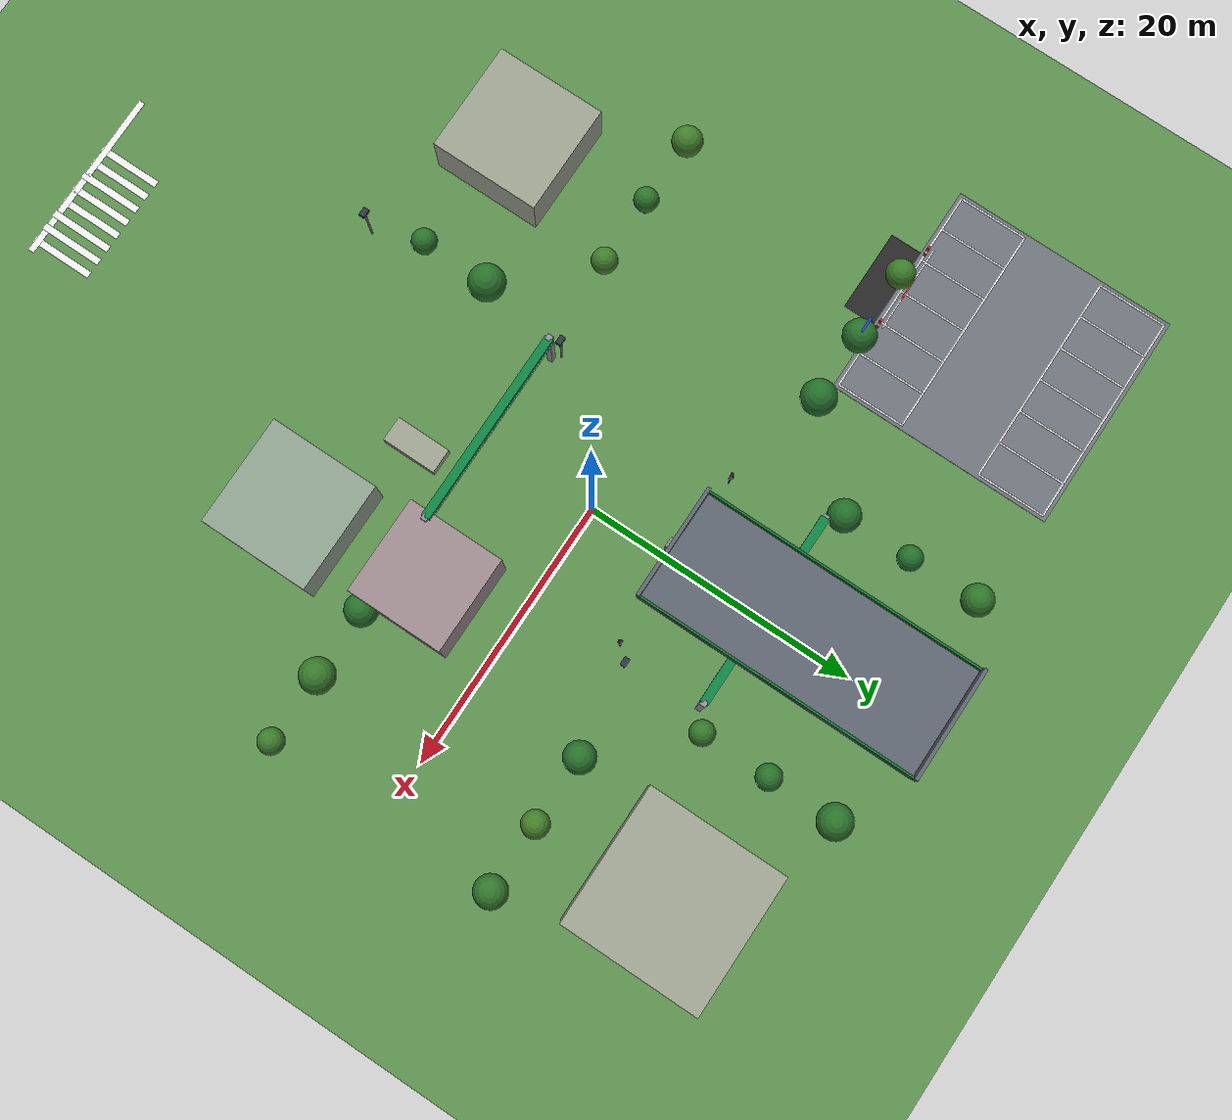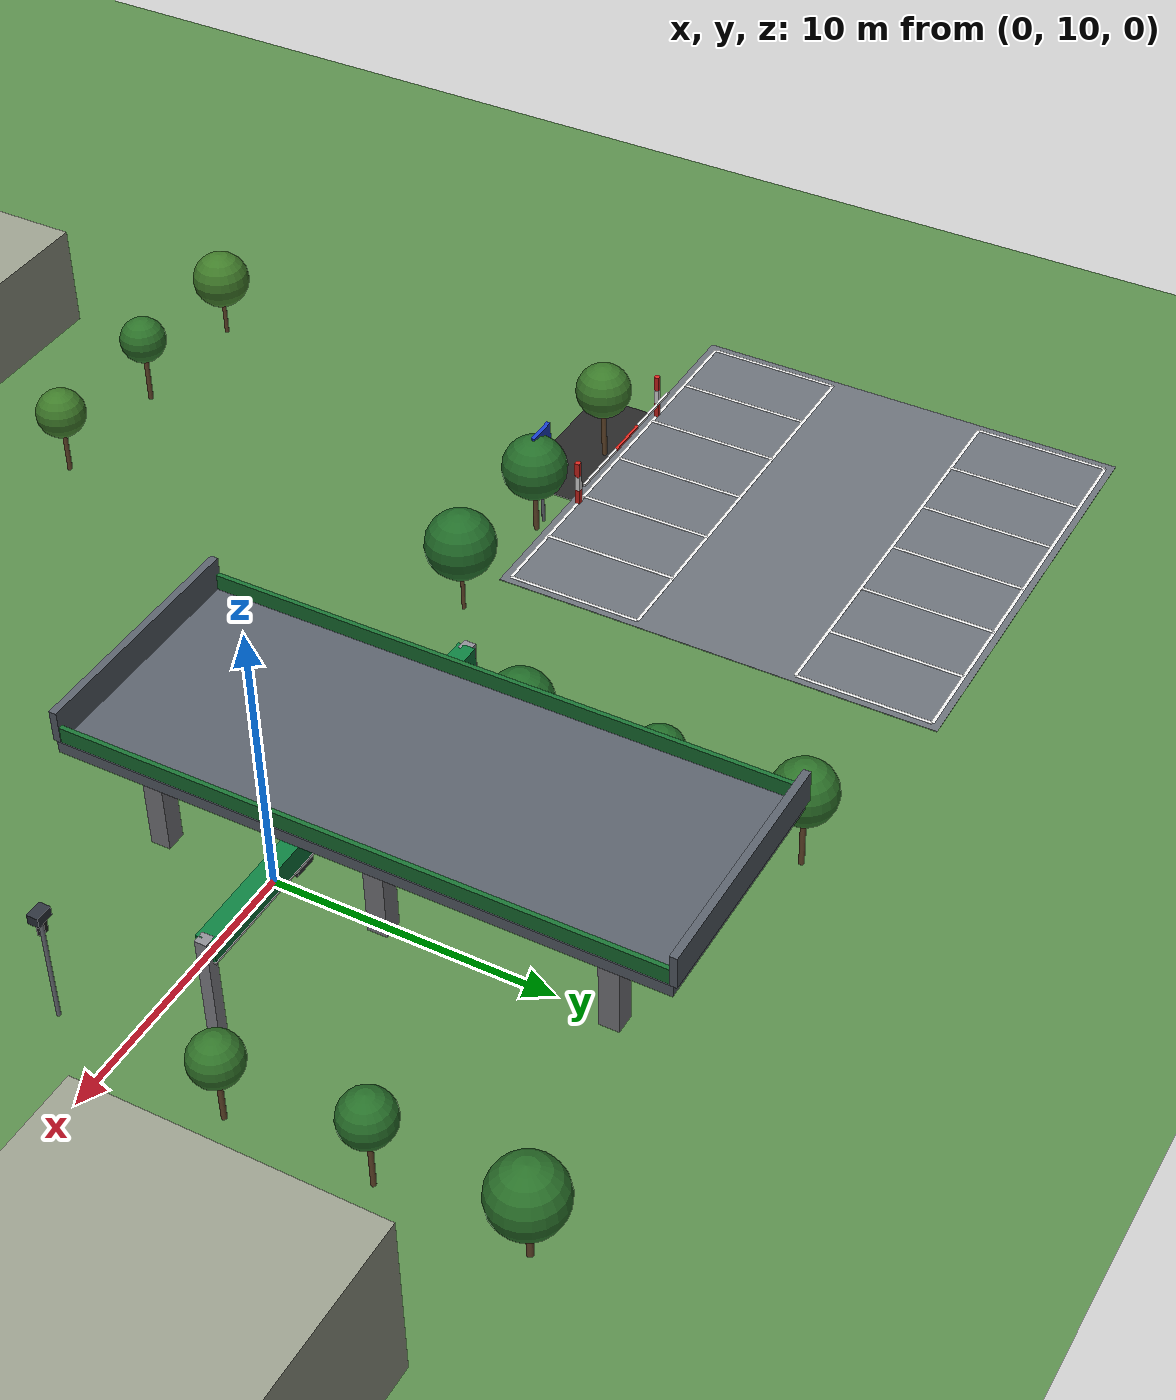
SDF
<sdf version="1.6">
 <world name="v2x_city">
  <model name="ground_plane">
   <static>true</static>
   <link name="link">
    <collision name="collision">
     <geometry><plane><normal>0 0 1</normal><size>300 300</size></plane></geometry>
     <surface><friction><ode><mu>100</mu><mu2>50</mu2></ode></friction></surface>
    </collision>
    <visual name="visual">
     <geometry><plane><normal>0 0 1</normal><size>300 300</size></plane></geometry>
     <material><ambient>0.35 0.55 0.3 1</ambient><diffuse>0.35 0.55 0.3 1</diffuse></material>
    </visual>
   </link>
  </model>
  <model name="zebra_J2_NS-school_3">
   <static>true</static>
   <link name="link">
    <pose>-2.15 -39.5 0.034 0 0 -1.5708</pose>
    <visual name="v">
     <geometry><box><size>4.6 0.5 0.004</size></box></geometry>
     <material><ambient>0.92 0.92 0.92 1</ambient><diffuse>0.92 0.92 0.92 1</diffuse></material>
    </visual>
   </link>
  </model>
  <model name="zebra_J2_NS-school_4">
   <static>true</static>
   <link name="link">
    <pose>-1.05 -39.5 0.034 0 0 -1.5708</pose>
    <visual name="v">
     <geometry><box><size>4.6 0.5 0.004</size></box></geometry>
     <material><ambient>0.92 0.92 0.92 1</ambient><diffuse>0.92 0.92 0.92 1</diffuse></material>
    </visual>
   </link>
  </model>
  <model name="zebra_J2_NS-school_5">
   <static>true</static>
   <link name="link">
    <pose>0.05 -39.5 0.034 0 0 -1.5708</pose>
    <visual name="v">
     <geometry><box><size>4.6 0.5 0.004</size></box></geometry>
     <material><ambient>0.92 0.92 0.92 1</ambient><diffuse>0.92 0.92 0.92 1</diffuse></material>
    </visual>
   </link>
  </model>
  <model name="zebra_J2_NS-school_6">
   <static>true</static>
   <link name="link">
    <pose>1.15 -39.5 0.034 0 0 -1.5708</pose>
    <visual name="v">
     <geometry><box><size>4.6 0.5 0.004</size></box></geometry>
     <material><ambient>0.92 0.92 0.92 1</ambient><diffuse>0.92 0.92 0.92 1</diffuse></material>
    </visual>
   </link>
  </model>
  <model name="zebra_J2_NS-school_7">
   <static>true</static>
   <link name="link">
    <pose>2.25 -39.5 0.034 0 0 -1.5708</pose>
    <visual name="v">
     <geometry><box><size>4.6 0.5 0.004</size></box></geometry>
     <material><ambient>0.92 0.92 0.92 1</ambient><diffuse>0.92 0.92 0.92 1</diffuse></material>
    </visual>
   </link>
  </model>
  <model name="zebra_J2_NS-school_8">
   <static>true</static>
   <link name="link">
    <pose>3.35 -39.5 0.034 0 0 -1.5708</pose>
    <visual name="v">
     <geometry><box><size>4.6 0.5 0.004</size></box></geometry>
     <material><ambient>0.92 0.92 0.92 1</ambient><diffuse>0.92 0.92 0.92 1</diffuse></material>
    </visual>
   </link>
  </model>
  <model name="zebra_J2_NS-school_9">
   <static>true</static>
   <link name="link">
    <pose>4.45 -39.5 0.034 0 0 -1.5708</pose>
    <visual name="v">
     <geometry><box><size>4.6 0.5 0.004</size></box></geometry>
     <material><ambient>0.92 0.92 0.92 1</ambient><diffuse>0.92 0.92 0.92 1</diffuse></material>
    </visual>
   </link>
  </model>
  <model name="zebra_J2_NS-school_10">
   <static>true</static>
   <link name="link">
    <pose>5.55 -39.5 0.034 0 0 -1.5708</pose>
    <visual name="v">
     <geometry><box><size>4.6 0.5 0.004</size></box></geometry>
     <material><ambient>0.92 0.92 0.92 1</ambient><diffuse>0.92 0.92 0.92 1</diffuse></material>
    </visual>
   </link>
  </model>
  <model name="stopline_J2_NS-school_p">
   <static>true</static>
   <link name="link">
    <pose>3.25 -41.5 0.034 0 0 -1.5708</pose>
    <visual name="v">
     <geometry><box><size>0.45 6.3 0.004</size></box></geometry>
     <material><ambient>0.92 0.92 0.92 1</ambient><diffuse>0.92 0.92 0.92 1</diffuse></material>
    </visual>
   </link>
  </model>
  <model name="stopline_J2_NS-school_m">
   <static>true</static>
   <link name="link">
    <pose>-3.25 -41.5 0.034 0 0 -1.5708</pose>
    <visual name="v">
     <geometry><box><size>0.45 6.3 0.004</size></box></geometry>
     <material><ambient>0.92 0.92 0.92 1</ambient><diffuse>0.92 0.92 0.92 1</diffuse></material>
    </visual>
   </link>
  </model>
  <model name="VIADUCT-01_deck">
   <static>true</static>
   <link name="link">
    <pose>0 16 7.2 0 0 1.5708</pose>
    <collision name="c">
     <geometry><box><size>20 8 0.4</size></box></geometry>
     <surface><friction><ode><mu>100</mu><mu2>50</mu2></ode></friction></surface>
    </collision>
    <visual name="v">
     <geometry><box><size>20 8 0.4</size></box></geometry>
     <material><ambient>0.35 0.38 0.42 1</ambient><diffuse>0.35 0.38 0.42 1</diffuse></material>
    </visual>
   </link>
  </model>
  <model name="VIADUCT-01_rail_p">
   <static>true</static>
   <link name="link">
    <pose>-3.9 16 7.675 0 0 1.5708</pose>
    <visual name="v">
     <geometry><box><size>20 0.15 0.55</size></box></geometry>
     <material><ambient>0.1 0.45 0.2 1</ambient><diffuse>0.1 0.45 0.2 1</diffuse></material>
    </visual>
   </link>
  </model>
  <model name="VIADUCT-01_rail_m">
   <static>true</static>
   <link name="link">
    <pose>3.9 16 7.675 0 0 1.5708</pose>
    <visual name="v">
     <geometry><box><size>20 0.15 0.55</size></box></geometry>
     <material><ambient>0.1 0.45 0.2 1</ambient><diffuse>0.1 0.45 0.2 1</diffuse></material>
    </visual>
   </link>
  </model>
  <model name="VIADUCT-01_end_p">
   <static>true</static>
   <link name="link">
    <pose>0 26 7.95 0 0 1.5708</pose>
    <visual name="v">
     <geometry><box><size>0.25 8 1.1</size></box></geometry>
     <material><ambient>0.35 0.38 0.42 1</ambient><diffuse>0.35 0.38 0.42 1</diffuse></material>
    </visual>
   </link>
  </model>
  <model name="VIADUCT-01_end_m">
   <static>true</static>
   <link name="link">
    <pose>0 6 7.95 0 0 1.5708</pose>
    <visual name="v">
     <geometry><box><size>0.25 8 1.1</size></box></geometry>
     <material><ambient>0.35 0.38 0.42 1</ambient><diffuse>0.35 0.38 0.42 1</diffuse></material>
    </visual>
   </link>
  </model>
  <model name="VIADUCT-01_pillar_0">
   <static>true</static>
   <link name="link">
    <pose>0 6 3.5 0 0 0</pose>
    <collision name="c">
     <geometry><box><size>0.7 0.7 7</size></box></geometry>
     <surface><friction><ode><mu>100</mu><mu2>50</mu2></ode></friction></surface>
    </collision>
    <visual name="v">
     <geometry><box><size>0.7 0.7 7</size></box></geometry>
     <material><ambient>0.5 0.5 0.52 1</ambient><diffuse>0.5 0.5 0.52 1</diffuse></material>
    </visual>
   </link>
  </model>
  <model name="VIADUCT-01_pillar_1">
   <static>true</static>
   <link name="link">
    <pose>0 14 3.5 0 0 0</pose>
    <collision name="c">
     <geometry><box><size>0.7 0.7 7</size></box></geometry>
     <surface><friction><ode><mu>100</mu><mu2>50</mu2></ode></friction></surface>
    </collision>
    <visual name="v">
     <geometry><box><size>0.7 0.7 7</size></box></geometry>
     <material><ambient>0.5 0.5 0.52 1</ambient><diffuse>0.5 0.5 0.52 1</diffuse></material>
    </visual>
   </link>
  </model>
  <model name="VIADUCT-01_pillar_2">
   <static>true</static>
   <link name="link">
    <pose>0 22 3.5 0 0 0</pose>
    <collision name="c">
     <geometry><box><size>0.7 0.7 7</size></box></geometry>
     <surface><friction><ode><mu>100</mu><mu2>50</mu2></ode></friction></surface>
    </collision>
    <visual name="v">
     <geometry><box><size>0.7 0.7 7</size></box></geometry>
     <material><ambient>0.5 0.5 0.52 1</ambient><diffuse>0.5 0.5 0.52 1</diffuse></material>
    </visual>
   </link>
  </model>
  <model name="PKG-NW_pad">
   <static>true</static>
   <link name="link">
    <pose>-24 17 0.008 0 0 0</pose>
    <visual name="v">
     <geometry><box><size>16.2 16.6 0.02</size></box></geometry>
     <material><ambient>0.42 0.44 0.47 1</ambient><diffuse>0.42 0.44 0.47 1</diffuse></material>
    </visual>
   </link>
  </model>
  <model name="PKG-NW_stall_0_0">
   <static>true</static>
   <link name="link">
    <pose>-31.8 11.5 0.024 0 0 0</pose>
    <visual name="v">
     <geometry><box><size>0.12 5 0.004</size></box></geometry>
     <material><ambient>0.92 0.92 0.92 1</ambient><diffuse>0.92 0.92 0.92 1</diffuse></material>
    </visual>
   </link>
  </model>
  <model name="PKG-NW_stall_0_1">
   <static>true</static>
   <link name="link">
    <pose>-29.2 11.5 0.024 0 0 0</pose>
    <visual name="v">
     <geometry><box><size>0.12 5 0.004</size></box></geometry>
     <material><ambient>0.92 0.92 0.92 1</ambient><diffuse>0.92 0.92 0.92 1</diffuse></material>
    </visual>
   </link>
  </model>
  <model name="PKG-NW_stall_0_2">
   <static>true</static>
   <link name="link">
    <pose>-26.6 11.5 0.024 0 0 0</pose>
    <visual name="v">
     <geometry><box><size>0.12 5 0.004</size></box></geometry>
     <material><ambient>0.92 0.92 0.92 1</ambient><diffuse>0.92 0.92 0.92 1</diffuse></material>
    </visual>
   </link>
  </model>
  <model name="PKG-NW_stall_0_3">
   <static>true</static>
   <link name="link">
    <pose>-24 11.5 0.024 0 0 0</pose>
    <visual name="v">
     <geometry><box><size>0.12 5 0.004</size></box></geometry>
     <material><ambient>0.92 0.92 0.92 1</ambient><diffuse>0.92 0.92 0.92 1</diffuse></material>
    </visual>
   </link>
  </model>
  <model name="PKG-NW_stall_0_4">
   <static>true</static>
   <link name="link">
    <pose>-21.4 11.5 0.024 0 0 0</pose>
    <visual name="v">
     <geometry><box><size>0.12 5 0.004</size></box></geometry>
     <material><ambient>0.92 0.92 0.92 1</ambient><diffuse>0.92 0.92 0.92 1</diffuse></material>
    </visual>
   </link>
  </model>
  <model name="PKG-NW_stall_0_5">
   <static>true</static>
   <link name="link">
    <pose>-18.8 11.5 0.024 0 0 0</pose>
    <visual name="v">
     <geometry><box><size>0.12 5 0.004</size></box></geometry>
     <material><ambient>0.92 0.92 0.92 1</ambient><diffuse>0.92 0.92 0.92 1</diffuse></material>
    </visual>
   </link>
  </model>
  <model name="PKG-NW_stall_0_6">
   <static>true</static>
   <link name="link">
    <pose>-16.2 11.5 0.024 0 0 0</pose>
    <visual name="v">
     <geometry><box><size>0.12 5 0.004</size></box></geometry>
     <material><ambient>0.92 0.92 0.92 1</ambient><diffuse>0.92 0.92 0.92 1</diffuse></material>
    </visual>
   </link>
  </model>
  <model name="PKG-NW_rowb_0_a">
   <static>true</static>
   <link name="link">
    <pose>-24 9 0.024 0 0 0</pose>
    <visual name="v">
     <geometry><box><size>15.6 0.12 0.004</size></box></geometry>
     <material><ambient>0.92 0.92 0.92 1</ambient><diffuse>0.92 0.92 0.92 1</diffuse></material>
    </visual>
   </link>
  </model>
  <model name="PKG-NW_rowb_0_b">
   <static>true</static>
   <link name="link">
    <pose>-24 14 0.024 0 0 0</pose>
    <visual name="v">
     <geometry><box><size>15.6 0.12 0.004</size></box></geometry>
     <material><ambient>0.92 0.92 0.92 1</ambient><diffuse>0.92 0.92 0.92 1</diffuse></material>
    </visual>
   </link>
  </model>
  <model name="PKG-NW_stall_1_0">
   <static>true</static>
   <link name="link">
    <pose>-31.8 22.5 0.024 0 0 0</pose>
    <visual name="v">
     <geometry><box><size>0.12 5 0.004</size></box></geometry>
     <material><ambient>0.92 0.92 0.92 1</ambient><diffuse>0.92 0.92 0.92 1</diffuse></material>
    </visual>
   </link>
  </model>
  <model name="PKG-NW_stall_1_1">
   <static>true</static>
   <link name="link">
    <pose>-29.2 22.5 0.024 0 0 0</pose>
    <visual name="v">
     <geometry><box><size>0.12 5 0.004</size></box></geometry>
     <material><ambient>0.92 0.92 0.92 1</ambient><diffuse>0.92 0.92 0.92 1</diffuse></material>
    </visual>
   </link>
  </model>
  <model name="PKG-NW_stall_1_2">
   <static>true</static>
   <link name="link">
    <pose>-26.6 22.5 0.024 0 0 0</pose>
    <visual name="v">
     <geometry><box><size>0.12 5 0.004</size></box></geometry>
     <material><ambient>0.92 0.92 0.92 1</ambient><diffuse>0.92 0.92 0.92 1</diffuse></material>
    </visual>
   </link>
  </model>
  <model name="PKG-NW_stall_1_3">
   <static>true</static>
   <link name="link">
    <pose>-24 22.5 0.024 0 0 0</pose>
    <visual name="v">
     <geometry><box><size>0.12 5 0.004</size></box></geometry>
     <material><ambient>0.92 0.92 0.92 1</ambient><diffuse>0.92 0.92 0.92 1</diffuse></material>
    </visual>
   </link>
  </model>
  <model name="PKG-NW_stall_1_4">
   <static>true</static>
   <link name="link">
    <pose>-21.4 22.5 0.024 0 0 0</pose>
    <visual name="v">
     <geometry><box><size>0.12 5 0.004</size></box></geometry>
     <material><ambient>0.92 0.92 0.92 1</ambient><diffuse>0.92 0.92 0.92 1</diffuse></material>
    </visual>
   </link>
  </model>
  <model name="PKG-NW_stall_1_5">
   <static>true</static>
   <link name="link">
    <pose>-18.8 22.5 0.024 0 0 0</pose>
    <visual name="v">
     <geometry><box><size>0.12 5 0.004</size></box></geometry>
     <material><ambient>0.92 0.92 0.92 1</ambient><diffuse>0.92 0.92 0.92 1</diffuse></material>
    </visual>
   </link>
  </model>
  <model name="PKG-NW_stall_1_6">
   <static>true</static>
   <link name="link">
    <pose>-16.2 22.5 0.024 0 0 0</pose>
    <visual name="v">
     <geometry><box><size>0.12 5 0.004</size></box></geometry>
     <material><ambient>0.92 0.92 0.92 1</ambient><diffuse>0.92 0.92 0.92 1</diffuse></material>
    </visual>
   </link>
  </model>
  <model name="PKG-NW_rowb_1_a">
   <static>true</static>
   <link name="link">
    <pose>-24 20 0.024 0 0 0</pose>
    <visual name="v">
     <geometry><box><size>15.6 0.12 0.004</size></box></geometry>
     <material><ambient>0.92 0.92 0.92 1</ambient><diffuse>0.92 0.92 0.92 1</diffuse></material>
    </visual>
   </link>
  </model>
  <model name="PKG-NW_rowb_1_b">
   <static>true</static>
   <link name="link">
    <pose>-24 25 0.024 0 0 0</pose>
    <visual name="v">
     <geometry><box><size>15.6 0.12 0.004</size></box></geometry>
     <material><ambient>0.92 0.92 0.92 1</ambient><diffuse>0.92 0.92 0.92 1</diffuse></material>
    </visual>
   </link>
  </model>
  <model name="PKG-NW_post_w_0">
   <static>true</static>
   <link name="link">
    <pose>-27 9 0.3 0 0 0</pose>
    <visual name="v">
     <geometry><box><size>0.18 0.18 0.6</size></box></geometry>
     <material><ambient>0.85 0.15 0.12 1</ambient><diffuse>0.85 0.15 0.12 1</diffuse></material>
    </visual>
   </link>
  </model>
  <model name="PKG-NW_post_w_1">
   <static>true</static>
   <link name="link">
    <pose>-27 9 0.9 0 0 0</pose>
    <visual name="v">
     <geometry><box><size>0.18 0.18 0.6</size></box></geometry>
     <material><ambient>0.92 0.92 0.92 1</ambient><diffuse>0.92 0.92 0.92 1</diffuse></material>
    </visual>
   </link>
  </model>
  <model name="PKG-NW_post_w_2">
   <static>true</static>
   <link name="link">
    <pose>-27 9 1.5 0 0 0</pose>
    <visual name="v">
     <geometry><box><size>0.18 0.18 0.6</size></box></geometry>
     <material><ambient>0.85 0.15 0.12 1</ambient><diffuse>0.85 0.15 0.12 1</diffuse></material>
    </visual>
   </link>
  </model>
  <model name="PKG-NW_post_e_0">
   <static>true</static>
   <link name="link">
    <pose>-21 9 0.3 0 0 0</pose>
    <visual name="v">
     <geometry><box><size>0.18 0.18 0.6</size></box></geometry>
     <material><ambient>0.85 0.15 0.12 1</ambient><diffuse>0.85 0.15 0.12 1</diffuse></material>
    </visual>
   </link>
  </model>
  <model name="PKG-NW_post_e_1">
   <static>true</static>
   <link name="link">
    <pose>-21 9 0.9 0 0 0</pose>
    <visual name="v">
     <geometry><box><size>0.18 0.18 0.6</size></box></geometry>
     <material><ambient>0.92 0.92 0.92 1</ambient><diffuse>0.92 0.92 0.92 1</diffuse></material>
    </visual>
   </link>
  </model>
  <model name="PKG-NW_post_e_2">
   <static>true</static>
   <link name="link">
    <pose>-21 9 1.5 0 0 0</pose>
    <visual name="v">
     <geometry><box><size>0.18 0.18 0.6</size></box></geometry>
     <material><ambient>0.85 0.15 0.12 1</ambient><diffuse>0.85 0.15 0.12 1</diffuse></material>
    </visual>
   </link>
  </model>
  <model name="PKG-NW_barrier">
   <static>true</static>
   <link name="link">
    <pose>-24 9.35 1.05 0 0 0</pose>
    <visual name="v">
     <geometry><box><size>6.4 0.09 0.09</size></box></geometry>
     <material><ambient>0.92 0.92 0.92 1</ambient><diffuse>0.92 0.92 0.92 1</diffuse></material>
    </visual>
   </link>
  </model>
  <model name="PKG-NW_barrier_red">
   <static>true</static>
   <link name="link">
    <pose>-24 9.35 1.05 0 0 0</pose>
    <visual name="v">
     <geometry><box><size>1.6 0.1 0.1</size></box></geometry>
     <material><ambient>0.85 0.15 0.12 1</ambient><diffuse>0.85 0.15 0.12 1</diffuse></material>
    </visual>
   </link>
  </model>
  <model name="PKG-NW_sign_pole">
   <static>true</static>
   <link name="link">
    <pose>-19.5 8.4 1.5 0 0 0</pose>
    <visual name="v">
     <geometry><cylinder><radius>0.06</radius><length>3</length></cylinder></geometry>
     <material><ambient>0.42 0.44 0.47 1</ambient><diffuse>0.42 0.44 0.47 1</diffuse></material>
    </visual>
   </link>
  </model>
  <model name="PKG-NW_sign_P">
   <static>true</static>
   <link name="link">
    <pose>-19.5 8.4 3.35 0 0 0</pose>
    <visual name="v">
     <geometry><box><size>1.1 0.15 1.3</size></box></geometry>
     <material><ambient>0.1 0.25 0.8 1</ambient><diffuse>0.1 0.25 0.8 1</diffuse></material>
    </visual>
   </link>
  </model>
  <model name="PKG-NW_access">
   <static>true</static>
   <link name="link">
    <pose>-24 7.7 0.006 0 0 0</pose>
    <visual name="v">
     <geometry><box><size>6 2.6 0.02</size></box></geometry>
     <material><ambient>0.15 0.15 0.15 1</ambient><diffuse>0.15 0.15 0.15 1</diffuse></material>
    </visual>
   </link>
  </model>
  <model name="ETC-01_post_e">
   <static>true</static>
   <link name="link">
    <pose>7 -8 2.75 0 0 0</pose>
    <collision name="c">
     <geometry><box><size>0.4 0.4 5.5</size></box></geometry>
     <surface><friction><ode><mu>100</mu><mu2>50</mu2></ode></friction></surface>
    </collision>
    <visual name="v">
     <geometry><box><size>0.4 0.4 5.5</size></box></geometry>
     <material><ambient>0.55 0.55 0.58 1</ambient><diffuse>0.55 0.55 0.58 1</diffuse></material>
    </visual>
   </link>
  </model>
  <model name="ETC-01_post_w">
   <static>true</static>
   <link name="link">
    <pose>-7 -8 2.75 0 0 0</pose>
    <collision name="c">
     <geometry><box><size>0.4 0.4 5.5</size></box></geometry>
     <surface><friction><ode><mu>100</mu><mu2>50</mu2></ode></friction></surface>
    </collision>
    <visual name="v">
     <geometry><box><size>0.4 0.4 5.5</size></box></geometry>
     <material><ambient>0.55 0.55 0.58 1</ambient><diffuse>0.55 0.55 0.58 1</diffuse></material>
    </visual>
   </link>
  </model>
  <model name="ETC-01_beam">
   <static>true</static>
   <link name="link">
    <pose>0 -8 5.1 0 0 0</pose>
    <visual name="v">
     <geometry><box><size>14 0.6 0.8</size></box></geometry>
     <material><ambient>0.05 0.5 0.25 1</ambient><diffuse>0.05 0.5 0.25 1</diffuse></material>
    </visual>
   </link>
  </model>
  <model name="ETC-01_stripe">
   <static>true</static>
   <link name="link">
    <pose>0 -8 4.65 0 0 0</pose>
    <visual name="v">
     <geometry><box><size>14 0.62 0.06</size></box></geometry>
     <material><ambient>0.92 0.92 0.92 1</ambient><diffuse>0.92 0.92 0.92 1</diffuse></material>
    </visual>
   </link>
  </model>
  <model name="ETC-01_reader_e">
   <static>true</static>
   <link name="link">
    <pose>2.5 -8 4.55 0 0 0</pose>
    <visual name="v">
     <geometry><box><size>0.8 0.5 0.4</size></box></geometry>
     <material><ambient>0.2 0.2 0.22 1</ambient><diffuse>0.2 0.2 0.22 1</diffuse></material>
    </visual>
   </link>
  </model>
  <model name="ETC-01_reader_w">
   <static>true</static>
   <link name="link">
    <pose>-2.5 -8 4.55 0 0 0</pose>
    <visual name="v">
     <geometry><box><size>0.8 0.5 0.4</size></box></geometry>
     <material><ambient>0.2 0.2 0.22 1</ambient><diffuse>0.2 0.2 0.22 1</diffuse></material>
    </visual>
   </link>
  </model>
  <model name="ETC-02_post_e">
   <static>true</static>
   <link name="link">
    <pose>7 13 2.75 0 0 0</pose>
    <collision name="c">
     <geometry><box><size>0.4 0.4 5.5</size></box></geometry>
     <surface><friction><ode><mu>100</mu><mu2>50</mu2></ode></friction></surface>
    </collision>
    <visual name="v">
     <geometry><box><size>0.4 0.4 5.5</size></box></geometry>
     <material><ambient>0.55 0.55 0.58 1</ambient><diffuse>0.55 0.55 0.58 1</diffuse></material>
    </visual>
   </link>
  </model>
  <model name="ETC-02_post_w">
   <static>true</static>
   <link name="link">
    <pose>-7 13 2.75 0 0 0</pose>
    <collision name="c">
     <geometry><box><size>0.4 0.4 5.5</size></box></geometry>
     <surface><friction><ode><mu>100</mu><mu2>50</mu2></ode></friction></surface>
    </collision>
    <visual name="v">
     <geometry><box><size>0.4 0.4 5.5</size></box></geometry>
     <material><ambient>0.55 0.55 0.58 1</ambient><diffuse>0.55 0.55 0.58 1</diffuse></material>
    </visual>
   </link>
  </model>
  <model name="ETC-02_beam">
   <static>true</static>
   <link name="link">
    <pose>0 13 5.1 0 0 0</pose>
    <visual name="v">
     <geometry><box><size>14 0.6 0.8</size></box></geometry>
     <material><ambient>0.05 0.5 0.25 1</ambient><diffuse>0.05 0.5 0.25 1</diffuse></material>
    </visual>
   </link>
  </model>
  <model name="ETC-02_stripe">
   <static>true</static>
   <link name="link">
    <pose>0 13 4.65 0 0 0</pose>
    <visual name="v">
     <geometry><box><size>14 0.62 0.06</size></box></geometry>
     <material><ambient>0.92 0.92 0.92 1</ambient><diffuse>0.92 0.92 0.92 1</diffuse></material>
    </visual>
   </link>
  </model>
  <model name="ETC-02_reader_e">
   <static>true</static>
   <link name="link">
    <pose>2.5 13 4.55 0 0 0</pose>
    <visual name="v">
     <geometry><box><size>0.8 0.5 0.4</size></box></geometry>
     <material><ambient>0.2 0.2 0.22 1</ambient><diffuse>0.2 0.2 0.22 1</diffuse></material>
    </visual>
   </link>
  </model>
  <model name="ETC-02_reader_w">
   <static>true</static>
   <link name="link">
    <pose>-2.5 13 4.55 0 0 0</pose>
    <visual name="v">
     <geometry><box><size>0.8 0.5 0.4</size></box></geometry>
     <material><ambient>0.2 0.2 0.22 1</ambient><diffuse>0.2 0.2 0.22 1</diffuse></material>
    </visual>
   </link>
  </model>
  <model name="RSU-J1-NE_pole">
   <static>true</static>
   <link name="link">
    <pose>7.5 7.5 2 0 0 0</pose>
    <collision name="c">
     <geometry><cylinder><radius>0.07</radius><length>4</length></cylinder></geometry>
     <surface><friction><ode><mu>100</mu><mu2>50</mu2></ode></friction></surface>
    </collision>
    <visual name="v">
     <geometry><cylinder><radius>0.07</radius><length>4</length></cylinder></geometry>
     <material><ambient>0.45 0.47 0.5 1</ambient><diffuse>0.45 0.47 0.5 1</diffuse></material>
    </visual>
   </link>
  </model>
  <model name="RSU-J1-NE_box">
   <static>true</static>
   <link name="link">
    <pose>7.5 7.5 4.2 0 0 0</pose>
    <visual name="v">
     <geometry><box><size>0.6 0.4 0.35</size></box></geometry>
     <material><ambient>0.18 0.2 0.24 1</ambient><diffuse>0.18 0.2 0.24 1</diffuse></material>
    </visual>
   </link>
  </model>
  <model name="RSU-J1-SW_pole">
   <static>true</static>
   <link name="link">
    <pose>-7.5 -7.5 2 0 0 0</pose>
    <collision name="c">
     <geometry><cylinder><radius>0.07</radius><length>4</length></cylinder></geometry>
     <surface><friction><ode><mu>100</mu><mu2>50</mu2></ode></friction></surface>
    </collision>
    <visual name="v">
     <geometry><cylinder><radius>0.07</radius><length>4</length></cylinder></geometry>
     <material><ambient>0.45 0.47 0.5 1</ambient><diffuse>0.45 0.47 0.5 1</diffuse></material>
    </visual>
   </link>
  </model>
  <model name="RSU-J1-SW_box">
   <static>true</static>
   <link name="link">
    <pose>-7.5 -7.5 4.2 0 0 0</pose>
    <visual name="v">
     <geometry><box><size>0.6 0.4 0.35</size></box></geometry>
     <material><ambient>0.18 0.2 0.24 1</ambient><diffuse>0.18 0.2 0.24 1</diffuse></material>
    </visual>
   </link>
  </model>
  <model name="RSU-J2-NW_pole">
   <static>true</static>
   <link name="link">
    <pose>-7.5 -23 2 0 0 0</pose>
    <collision name="c">
     <geometry><cylinder><radius>0.07</radius><length>4</length></cylinder></geometry>
     <surface><friction><ode><mu>100</mu><mu2>50</mu2></ode></friction></surface>
    </collision>
    <visual name="v">
     <geometry><cylinder><radius>0.07</radius><length>4</length></cylinder></geometry>
     <material><ambient>0.45 0.47 0.5 1</ambient><diffuse>0.45 0.47 0.5 1</diffuse></material>
    </visual>
   </link>
  </model>
  <model name="RSU-J2-NW_box">
   <static>true</static>
   <link name="link">
    <pose>-7.5 -23 4.2 0 0 0</pose>
    <visual name="v">
     <geometry><box><size>0.6 0.4 0.35</size></box></geometry>
     <material><ambient>0.18 0.2 0.24 1</ambient><diffuse>0.18 0.2 0.24 1</diffuse></material>
    </visual>
   </link>
  </model>
  <model name="TREES-NS-N_t0">
   <static>true</static>
   <link name="link">
    <pose>-8.4 14 0.9028 0 0 0</pose>
    <visual name="v">
     <geometry><cylinder><radius>0.083</radius><length>1.8056</length></cylinder></geometry>
     <material><ambient>0.42 0.3 0.18 1</ambient><diffuse>0.42 0.3 0.18 1</diffuse></material>
    </visual>
   </link>
  </model>
  <model name="TREES-NS-N_c0">
   <static>true</static>
   <link name="link">
    <pose>-8.4 14 2.5142 0 0 0</pose>
    <visual name="v">
     <geometry><sphere><radius>1.1429</radius></sphere></geometry>
     <material><ambient>0.1301 0.4251 0.16 1</ambient><diffuse>0.1301 0.4251 0.16 1</diffuse></material>
    </visual>
   </link>
  </model>
  <model name="TREES-NS-N_t1">
   <static>true</static>
   <link name="link">
    <pose>8.4 14 0.978 0 0 0</pose>
    <visual name="v">
     <geometry><cylinder><radius>0.0914</radius><length>1.956</length></cylinder></geometry>
     <material><ambient>0.42 0.3 0.18 1</ambient><diffuse>0.42 0.3 0.18 1</diffuse></material>
    </visual>
   </link>
  </model>
  <model name="TREES-NS-N_c1">
   <static>true</static>
   <link name="link">
    <pose>8.4 14 2.4992 0 0 0</pose>
    <visual name="v">
     <geometry><sphere><radius>0.8761</radius></sphere></geometry>
     <material><ambient>0.191 0.4555 0.16 1</ambient><diffuse>0.191 0.4555 0.16 1</diffuse></material>
    </visual>
   </link>
  </model>
  <model name="TREES-NS-N_t2">
   <static>true</static>
   <link name="link">
    <pose>-8.4 19 1.0018 0 0 0</pose>
    <visual name="v">
     <geometry><cylinder><radius>0.0715</radius><length>2.0036</length></cylinder></geometry>
     <material><ambient>0.42 0.3 0.18 1</ambient><diffuse>0.42 0.3 0.18 1</diffuse></material>
    </visual>
   </link>
  </model>
  <model name="TREES-NS-N_c2">
   <static>true</static>
   <link name="link">
    <pose>-8.4 19 2.55 0 0 0</pose>
    <visual name="v">
     <geometry><sphere><radius>0.8814</radius></sphere></geometry>
     <material><ambient>0.1327 0.4263 0.16 1</ambient><diffuse>0.1327 0.4263 0.16 1</diffuse></material>
    </visual>
   </link>
  </model>
  <model name="TREES-NS-N_t3">
   <static>true</static>
   <link name="link">
    <pose>8.4 19 1.1394 0 0 0</pose>
    <visual name="v">
     <geometry><cylinder><radius>0.087</radius><length>2.2788</length></cylinder></geometry>
     <material><ambient>0.42 0.3 0.18 1</ambient><diffuse>0.42 0.3 0.18 1</diffuse></material>
    </visual>
   </link>
  </model>
  <model name="TREES-NS-N_c3">
   <static>true</static>
   <link name="link">
    <pose>8.4 19 2.8403 0 0 0</pose>
    <visual name="v">
     <geometry><sphere><radius>0.9057</radius></sphere></geometry>
     <material><ambient>0.1513 0.4356 0.16 1</ambient><diffuse>0.1513 0.4356 0.16 1</diffuse></material>
    </visual>
   </link>
  </model>
  <model name="TREES-NS-N_t4">
   <static>true</static>
   <link name="link">
    <pose>-8.4 24 1.1817 0 0 0</pose>
    <visual name="v">
     <geometry><cylinder><radius>0.0951</radius><length>2.3634</length></cylinder></geometry>
     <material><ambient>0.42 0.3 0.18 1</ambient><diffuse>0.42 0.3 0.18 1</diffuse></material>
    </visual>
   </link>
  </model>
  <model name="TREES-NS-N_c4">
   <static>true</static>
   <link name="link">
    <pose>-8.4 24 3.0514 0 0 0</pose>
    <visual name="v">
     <geometry><sphere><radius>1.1097</radius></sphere></geometry>
     <material><ambient>0.1755 0.4478 0.16 1</ambient><diffuse>0.1755 0.4478 0.16 1</diffuse></material>
    </visual>
   </link>
  </model>
  <model name="TREES-NS-N_t5">
   <static>true</static>
   <link name="link">
    <pose>8.4 24 0.8663 0 0 0</pose>
    <visual name="v">
     <geometry><cylinder><radius>0.1091</radius><length>1.7326</length></cylinder></geometry>
     <material><ambient>0.42 0.3 0.18 1</ambient><diffuse>0.42 0.3 0.18 1</diffuse></material>
    </visual>
   </link>
  </model>
  <model name="TREES-NS-N_c5">
   <static>true</static>
   <link name="link">
    <pose>8.4 24 2.4991 0 0 0</pose>
    <visual name="v">
     <geometry><sphere><radius>1.2363</radius></sphere></geometry>
     <material><ambient>0.1605 0.4403 0.16 1</ambient><diffuse>0.1605 0.4403 0.16 1</diffuse></material>
    </visual>
   </link>
  </model>
  <model name="TREES-NS-M_t6">
   <static>true</static>
   <link name="link">
    <pose>8.4 -14 1.1868 0 0 0</pose>
    <visual name="v">
     <geometry><cylinder><radius>0.0791</radius><length>2.3736</length></cylinder></geometry>
     <material><ambient>0.42 0.3 0.18 1</ambient><diffuse>0.42 0.3 0.18 1</diffuse></material>
    </visual>
   </link>
  </model>
  <model name="TREES-NS-M_c6">
   <static>true</static>
   <link name="link">
    <pose>8.4 -14 2.9359 0 0 0</pose>
    <visual name="v">
     <geometry><sphere><radius>0.9068</radius></sphere></geometry>
     <material><ambient>0.2187 0.4693 0.16 1</ambient><diffuse>0.2187 0.4693 0.16 1</diffuse></material>
    </visual>
   </link>
  </model>
  <model name="TREES-NS-M_t7">
   <static>true</static>
   <link name="link">
    <pose>-8.4 -14 0.9366 0 0 0</pose>
    <visual name="v">
     <geometry><cylinder><radius>0.0734</radius><length>1.8732</length></cylinder></geometry>
     <material><ambient>0.42 0.3 0.18 1</ambient><diffuse>0.42 0.3 0.18 1</diffuse></material>
    </visual>
   </link>
  </model>
  <model name="TREES-NS-M_c7">
   <static>true</static>
   <link name="link">
    <pose>-8.4 -14 2.679 0 0 0</pose>
    <visual name="v">
     <geometry><sphere><radius>1.2996</radius></sphere></geometry>
     <material><ambient>0.1493 0.4347 0.16 1</ambient><diffuse>0.1493 0.4347 0.16 1</diffuse></material>
    </visual>
   </link>
  </model>
  <model name="TREES-NS-M_t8">
   <static>true</static>
   <link name="link">
    <pose>8.4 -19 1.0107 0 0 0</pose>
    <visual name="v">
     <geometry><cylinder><radius>0.0957</radius><length>2.0214</length></cylinder></geometry>
     <material><ambient>0.42 0.3 0.18 1</ambient><diffuse>0.42 0.3 0.18 1</diffuse></material>
    </visual>
   </link>
  </model>
  <model name="TREES-NS-M_c8">
   <static>true</static>
   <link name="link">
    <pose>8.4 -19 2.6748 0 0 0</pose>
    <visual name="v">
     <geometry><sphere><radius>1.0539</radius></sphere></geometry>
     <material><ambient>0.1893 0.4546 0.16 1</ambient><diffuse>0.1893 0.4546 0.16 1</diffuse></material>
    </visual>
   </link>
  </model>
  <model name="TREES-NS-M_t9">
   <static>true</static>
   <link name="link">
    <pose>-8.4 -19 1.1407 0 0 0</pose>
    <visual name="v">
     <geometry><cylinder><radius>0.0777</radius><length>2.2814</length></cylinder></geometry>
     <material><ambient>0.42 0.3 0.18 1</ambient><diffuse>0.42 0.3 0.18 1</diffuse></material>
    </visual>
   </link>
  </model>
  <model name="TREES-NS-M_c9">
   <static>true</static>
   <link name="link">
    <pose>-8.4 -19 2.8334 0 0 0</pose>
    <visual name="v">
     <geometry><sphere><radius>0.8903</radius></sphere></geometry>
     <material><ambient>0.1528 0.4364 0.16 1</ambient><diffuse>0.1528 0.4364 0.16 1</diffuse></material>
    </visual>
   </link>
  </model>
  <model name="TREES-EW-W_t10">
   <static>true</static>
   <link name="link">
    <pose>-14 -8.4 0.9807 0 0 0</pose>
    <visual name="v">
     <geometry><cylinder><radius>0.0885</radius><length>1.9613</length></cylinder></geometry>
     <material><ambient>0.42 0.3 0.18 1</ambient><diffuse>0.42 0.3 0.18 1</diffuse></material>
    </visual>
   </link>
  </model>
  <model name="TREES-EW-W_c10">
   <static>true</static>
   <link name="link">
    <pose>-14 -8.4 2.527 0 0 0</pose>
    <visual name="v">
     <geometry><sphere><radius>0.9123</radius></sphere></geometry>
     <material><ambient>0.2413 0.4807 0.16 1</ambient><diffuse>0.2413 0.4807 0.16 1</diffuse></material>
    </visual>
   </link>
  </model>
  <model name="TREES-EW-W_t11">
   <static>true</static>
   <link name="link">
    <pose>-14 8.4 1.026 0 0 0</pose>
    <visual name="v">
     <geometry><cylinder><radius>0.0703</radius><length>2.0519</length></cylinder></geometry>
     <material><ambient>0.42 0.3 0.18 1</ambient><diffuse>0.42 0.3 0.18 1</diffuse></material>
    </visual>
   </link>
  </model>
  <model name="TREES-EW-W_c11">
   <static>true</static>
   <link name="link">
    <pose>-14 8.4 2.8296 0 0 0</pose>
    <visual name="v">
     <geometry><sphere><radius>1.2542</radius></sphere></geometry>
     <material><ambient>0.1313 0.4257 0.16 1</ambient><diffuse>0.1313 0.4257 0.16 1</diffuse></material>
    </visual>
   </link>
  </model>
  <model name="TREES-EW-W_t12">
   <static>true</static>
   <link name="link">
    <pose>-19 -8.4 1.0658 0 0 0</pose>
    <visual name="v">
     <geometry><cylinder><radius>0.0922</radius><length>2.1317</length></cylinder></geometry>
     <material><ambient>0.42 0.3 0.18 1</ambient><diffuse>0.42 0.3 0.18 1</diffuse></material>
    </visual>
   </link>
  </model>
  <model name="TREES-EW-W_c12">
   <static>true</static>
   <link name="link">
    <pose>-19 -8.4 2.6701 0 0 0</pose>
    <visual name="v">
     <geometry><sphere><radius>0.8684</radius></sphere></geometry>
     <material><ambient>0.1731 0.4465 0.16 1</ambient><diffuse>0.1731 0.4465 0.16 1</diffuse></material>
    </visual>
   </link>
  </model>
  <model name="TREES-EW-W_t13">
   <static>true</static>
   <link name="link">
    <pose>-19 8.4 1.0082 0 0 0</pose>
    <visual name="v">
     <geometry><cylinder><radius>0.0981</radius><length>2.0164</length></cylinder></geometry>
     <material><ambient>0.42 0.3 0.18 1</ambient><diffuse>0.42 0.3 0.18 1</diffuse></material>
    </visual>
   </link>
  </model>
  <model name="TREES-EW-W_c13">
   <static>true</static>
   <link name="link">
    <pose>-19 8.4 2.7457 0 0 0</pose>
    <visual name="v">
     <geometry><sphere><radius>1.1763</radius></sphere></geometry>
     <material><ambient>0.142 0.431 0.16 1</ambient><diffuse>0.142 0.431 0.16 1</diffuse></material>
    </visual>
   </link>
  </model>
  <model name="TREES-EW-W_t14">
   <static>true</static>
   <link name="link">
    <pose>-24 -8.4 0.8888 0 0 0</pose>
    <visual name="v">
     <geometry><cylinder><radius>0.0795</radius><length>1.7777</length></cylinder></geometry>
     <material><ambient>0.42 0.3 0.18 1</ambient><diffuse>0.42 0.3 0.18 1</diffuse></material>
    </visual>
   </link>
  </model>
  <model name="TREES-EW-W_c14">
   <static>true</static>
   <link name="link">
    <pose>-24 -8.4 2.4459 0 0 0</pose>
    <visual name="v">
     <geometry><sphere><radius>1.0778</radius></sphere></geometry>
     <material><ambient>0.2493 0.4847 0.16 1</ambient><diffuse>0.2493 0.4847 0.16 1</diffuse></material>
    </visual>
   </link>
  </model>
  <model name="TREES-EW-W_t15">
   <static>true</static>
   <link name="link">
    <pose>-24 8.4 1.121 0 0 0</pose>
    <visual name="v">
     <geometry><cylinder><radius>0.0936</radius><length>2.2419</length></cylinder></geometry>
     <material><ambient>0.42 0.3 0.18 1</ambient><diffuse>0.42 0.3 0.18 1</diffuse></material>
    </visual>
   </link>
  </model>
  <model name="TREES-EW-W_c15">
   <static>true</static>
   <link name="link">
    <pose>-24 8.4 2.876 0 0 0</pose>
    <visual name="v">
     <geometry><sphere><radius>1.0226</radius></sphere></geometry>
     <material><ambient>0.2245 0.4722 0.16 1</ambient><diffuse>0.2245 0.4722 0.16 1</diffuse></material>
    </visual>
   </link>
  </model>
  <model name="TREES-EW-E_t16">
   <static>true</static>
   <link name="link">
    <pose>14 8.4 1.0001 0 0 0</pose>
    <visual name="v">
     <geometry><cylinder><radius>0.0929</radius><length>2.0002</length></cylinder></geometry>
     <material><ambient>0.42 0.3 0.18 1</ambient><diffuse>0.42 0.3 0.18 1</diffuse></material>
    </visual>
   </link>
  </model>
  <model name="TREES-EW-E_c16">
   <static>true</static>
   <link name="link">
    <pose>14 8.4 2.6885 0 0 0</pose>
    <visual name="v">
     <geometry><sphere><radius>1.1101</radius></sphere></geometry>
     <material><ambient>0.1489 0.4344 0.16 1</ambient><diffuse>0.1489 0.4344 0.16 1</diffuse></material>
    </visual>
   </link>
  </model>
  <model name="TREES-EW-E_t17">
   <static>true</static>
   <link name="link">
    <pose>14 -8.4 1.1383 0 0 0</pose>
    <visual name="v">
     <geometry><cylinder><radius>0.1025</radius><length>2.2765</length></cylinder></geometry>
     <material><ambient>0.42 0.3 0.18 1</ambient><diffuse>0.42 0.3 0.18 1</diffuse></material>
    </visual>
   </link>
  </model>
  <model name="TREES-EW-E_c17">
   <static>true</static>
   <link name="link">
    <pose>14 -8.4 2.9858 0 0 0</pose>
    <visual name="v">
     <geometry><sphere><radius>1.1441</radius></sphere></geometry>
     <material><ambient>0.1424 0.4312 0.16 1</ambient><diffuse>0.1424 0.4312 0.16 1</diffuse></material>
    </visual>
   </link>
  </model>
  <model name="TREES-EW-E_t18">
   <static>true</static>
   <link name="link">
    <pose>19 8.4 0.9647 0 0 0</pose>
    <visual name="v">
     <geometry><cylinder><radius>0.0908</radius><length>1.9294</length></cylinder></geometry>
     <material><ambient>0.42 0.3 0.18 1</ambient><diffuse>0.42 0.3 0.18 1</diffuse></material>
    </visual>
   </link>
  </model>
  <model name="TREES-EW-E_c18">
   <static>true</static>
   <link name="link">
    <pose>19 8.4 2.5262 0 0 0</pose>
    <visual name="v">
     <geometry><sphere><radius>0.9625</radius></sphere></geometry>
     <material><ambient>0.2534 0.4867 0.16 1</ambient><diffuse>0.2534 0.4867 0.16 1</diffuse></material>
    </visual>
   </link>
  </model>
  <model name="TREES-EW-E_t19">
   <static>true</static>
   <link name="link">
    <pose>19 -8.4 0.8656 0 0 0</pose>
    <visual name="v">
     <geometry><cylinder><radius>0.1099</radius><length>1.7312</length></cylinder></geometry>
     <material><ambient>0.42 0.3 0.18 1</ambient><diffuse>0.42 0.3 0.18 1</diffuse></material>
    </visual>
   </link>
  </model>
  <model name="TREES-EW-E_c19">
   <static>true</static>
   <link name="link">
    <pose>19 -8.4 2.4982 0 0 0</pose>
    <visual name="v">
     <geometry><sphere><radius>1.2371</radius></sphere></geometry>
     <material><ambient>0.2044 0.4622 0.16 1</ambient><diffuse>0.2044 0.4622 0.16 1</diffuse></material>
    </visual>
   </link>
  </model>
  <model name="TREES-EW-E_t20">
   <static>true</static>
   <link name="link">
    <pose>24 8.4 0.9493 0 0 0</pose>
    <visual name="v">
     <geometry><cylinder><radius>0.0853</radius><length>1.8985</length></cylinder></geometry>
     <material><ambient>0.42 0.3 0.18 1</ambient><diffuse>0.42 0.3 0.18 1</diffuse></material>
    </visual>
   </link>
  </model>
  <model name="TREES-EW-E_c20">
   <static>true</static>
   <link name="link">
    <pose>24 8.4 2.6138 0 0 0</pose>
    <visual name="v">
     <geometry><sphere><radius>1.1537</radius></sphere></geometry>
     <material><ambient>0.184 0.452 0.16 1</ambient><diffuse>0.184 0.452 0.16 1</diffuse></material>
    </visual>
   </link>
  </model>
  <model name="TREES-EW-E_t21">
   <static>true</static>
   <link name="link">
    <pose>24 -8.4 1.0816 0 0 0</pose>
    <visual name="v">
     <geometry><cylinder><radius>0.0974</radius><length>2.1633</length></cylinder></geometry>
     <material><ambient>0.42 0.3 0.18 1</ambient><diffuse>0.42 0.3 0.18 1</diffuse></material>
    </visual>
   </link>
  </model>
  <model name="TREES-EW-E_c21">
   <static>true</static>
   <link name="link">
    <pose>24 -8.4 2.7274 0 0 0</pose>
    <visual name="v">
     <geometry><sphere><radius>0.9098</radius></sphere></geometry>
     <material><ambient>0.2275 0.4737 0.16 1</ambient><diffuse>0.2275 0.4737 0.16 1</diffuse></material>
    </visual>
   </link>
  </model>
  <model name="TL-J1-NE">
   <static>true</static>
   <pose>6.5 6.5 0 0 0 -1.5708</pose>
   <link name="link">
    <visual name="pole">
     <pose>0 0 1.2 0 0 0</pose>
     <geometry><cylinder><radius>0.06</radius><length>2.4</length></cylinder></geometry>
     <material><ambient>0.15 0.15 0.15 1</ambient><diffuse>0.2 0.2 0.2 1</diffuse></material>
    </visual>
    <collision name="pole_c">
     <pose>0 0 1.2 0 0 0</pose>
     <geometry><cylinder><radius>0.06</radius><length>2.4</length></cylinder></geometry>
    </collision>
    <visual name="housing">
     <pose>0 0 2.5 0 0 0</pose>
     <geometry><box><size>0.18 0.30 0.90</size></box></geometry>
     <material><ambient>0.08 0.08 0.08 1</ambient><diffuse>0.12 0.12 0.12 1</diffuse></material>
    </visual>
    <visual name="red">
     <pose>0.10 0 2.78 0 0 0</pose>
     <geometry><sphere><radius>0.09</radius></sphere></geometry>
     <material>
      <ambient>0.45 0 0 1</ambient>
      <diffuse>0.5 0 0 1</diffuse>
      <emissive>0.9 0.05 0.05 1</emissive>
     </material>
    </visual>
    <visual name="yellow">
     <pose>0.10 0 2.50 0 0 0</pose>
     <geometry><sphere><radius>0.09</radius></sphere></geometry>
     <material><ambient>0.45 0.36 0 1</ambient><diffuse>0.5 0.4 0 1</diffuse></material>
    </visual>
    <visual name="green">
     <pose>0.10 0 2.22 0 0 0</pose>
     <geometry><sphere><radius>0.09</radius></sphere></geometry>
     <material><ambient>0 0.45 0 1</ambient><diffuse>0 0.5 0 1</diffuse></material>
    </visual>
   </link>
   <plugin name="v2x_traffic_light" filename="libv2x_traffic_light.so">
    <state_topic>traffic_light/J1_ns/state</state_topic>
    <link_name>link</link_name>
   </plugin>
  </model>
  <model name="TL-J1-NW">
   <static>true</static>
   <pose>-6.5 6.5 0 0 0 1.5708</pose>
   <link name="link">
    <visual name="pole">
     <pose>0 0 1.2 0 0 0</pose>
     <geometry><cylinder><radius>0.06</radius><length>2.4</length></cylinder></geometry>
     <material><ambient>0.15 0.15 0.15 1</ambient><diffuse>0.2 0.2 0.2 1</diffuse></material>
    </visual>
    <collision name="pole_c">
     <pose>0 0 1.2 0 0 0</pose>
     <geometry><cylinder><radius>0.06</radius><length>2.4</length></cylinder></geometry>
    </collision>
    <visual name="housing">
     <pose>0 0 2.5 0 0 0</pose>
     <geometry><box><size>0.18 0.30 0.90</size></box></geometry>
     <material><ambient>0.08 0.08 0.08 1</ambient><diffuse>0.12 0.12 0.12 1</diffuse></material>
    </visual>
    <visual name="red">
     <pose>0.10 0 2.78 0 0 0</pose>
     <geometry><sphere><radius>0.09</radius></sphere></geometry>
     <material>
      <ambient>0.45 0 0 1</ambient>
      <diffuse>0.5 0 0 1</diffuse>
      <emissive>0.9 0.05 0.05 1</emissive>
     </material>
    </visual>
    <visual name="yellow">
     <pose>0.10 0 2.50 0 0 0</pose>
     <geometry><sphere><radius>0.09</radius></sphere></geometry>
     <material><ambient>0.45 0.36 0 1</ambient><diffuse>0.5 0.4 0 1</diffuse></material>
    </visual>
    <visual name="green">
     <pose>0.10 0 2.22 0 0 0</pose>
     <geometry><sphere><radius>0.09</radius></sphere></geometry>
     <material><ambient>0 0.45 0 1</ambient><diffuse>0 0.5 0 1</diffuse></material>
    </visual>
   </link>
   <plugin name="v2x_traffic_light" filename="libv2x_traffic_light.so">
    <state_topic>traffic_light/J1_ew/state</state_topic>
    <link_name>link</link_name>
   </plugin>
  </model>
  <model name="building_ne">
   <static>true</static>
   <link name="link">
    <pose>18 18 3 0 0 0</pose>
    <collision name="c">
     <geometry><box><size>10 10 6</size></box></geometry>
     <surface><friction><ode><mu>100</mu><mu2>50</mu2></ode></friction></surface>
    </collision>
    <visual name="v">
     <geometry><box><size>10 10 6</size></box></geometry>
     <material><ambient>0.6 0.62 0.55 1</ambient><diffuse>0.6 0.62 0.55 1</diffuse></material>
    </visual>
   </link>
  </model>
  <model name="building_sw">
   <static>true</static>
   <link name="link">
    <pose>-18 -18 2 0 0 0</pose>
    <collision name="c">
     <geometry><box><size>8 8 4</size></box></geometry>
     <surface><friction><ode><mu>100</mu><mu2>50</mu2></ode></friction></surface>
    </collision>
    <visual name="v">
     <geometry><box><size>8 8 4</size></box></geometry>
     <material><ambient>0.6 0.62 0.55 1</ambient><diffuse>0.6 0.62 0.55 1</diffuse></material>
    </visual>
   </link>
  </model>
  <model name="building_e1">
   <static>true</static>
   <link name="link">
    <pose>11 -16 2 0 0 0</pose>
    <collision name="c">
     <geometry><box><size>8 8 4</size></box></geometry>
     <surface><friction><ode><mu>100</mu><mu2>50</mu2></ode></friction></surface>
    </collision>
    <visual name="v">
     <geometry><box><size>8 8 4</size></box></geometry>
     <material><ambient>0.55 0.62 0.55 1</ambient><diffuse>0.55 0.62 0.55 1</diffuse></material>
    </visual>
   </link>
  </model>
  <model name="building_e2">
   <static>true</static>
   <link name="link">
    <pose>10 -6 2.5 0 0 0</pose>
    <collision name="c">
     <geometry><box><size>7 7 5</size></box></geometry>
     <surface><friction><ode><mu>100</mu><mu2>50</mu2></ode></friction></surface>
    </collision>
    <visual name="v">
     <geometry><box><size>7 7 5</size></box></geometry>
     <material><ambient>0.6 0.53 0.55 1</ambient><diffuse>0.6 0.53 0.55 1</diffuse></material>
    </visual>
   </link>
  </model>
  <model name="obstacle_1">
   <static>true</static>
   <link name="link">
    <pose>3 -12 0.5 0 0 0</pose>
    <collision name="c">
     <geometry><box><size>1.8 4 1</size></box></geometry>
     <surface><friction><ode><mu>100</mu><mu2>50</mu2></ode></friction></surface>
    </collision>
    <visual name="v">
     <geometry><box><size>1.8 4 1</size></box></geometry>
     <material><ambient>0.6 0.62 0.55 1</ambient><diffuse>0.6 0.62 0.55 1</diffuse></material>
    </visual>
   </link>
  </model>
 </world>
</sdf>
